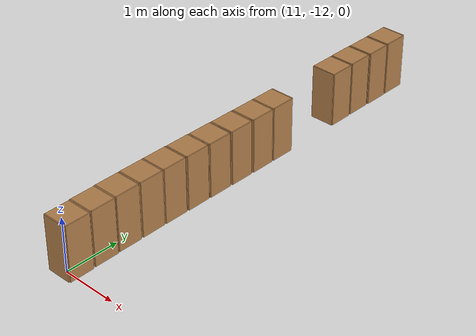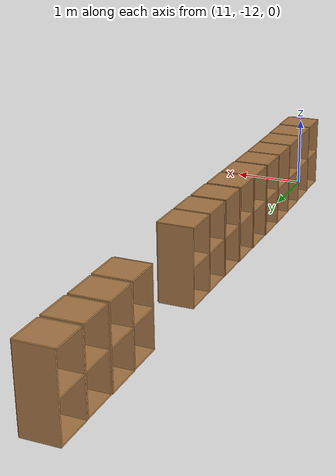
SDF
<sdf version="1.6">
 <world name="default">
  <model name="cabinet">
   <static>1</static>
   <link name="cabinet_bottom_plate">
    <inertial>
     <pose>0 0 -1 0 -0 0</pose>
     <inertia><ixx>2.05</ixx><ixy>0</ixy><ixz>0</ixz><iyy>2.05</iyy><iyz>0</iyz><izz>2.05</izz></inertia>
     <mass>25</mass>
    </inertial>
    <collision name="cabinet_bottom_plate_geom">
     <pose>0 0 0.01 0 -0 0</pose>
     <geometry><box><size>0.45 0.45 0.02</size></box></geometry>
    </collision>
    <visual name="cabinet_bottom_plate_geom_visual">
     <pose>0 0 0.01 0 -0 0</pose>
     <geometry><box><size>0.45 0.45 0.02</size></box></geometry>
     <material>
      <script><uri>file://media/materials/scripts/gazebo.material</uri><name>Gazebo/Wood</name></script>
     </material>
    </visual>
    <collision name="cabinet_bottom_plate_geom_cabinet_back_plate">
     <pose>0.235 0 0.51 0 -0 0</pose>
     <geometry><box><size>0.02 0.45 1.02</size></box></geometry>
    </collision>
    <visual name="cabinet_bottom_plate_geom_cabinet_back_plate_visual">
     <pose>0.235 0 0.51 0 -0 0</pose>
     <geometry><box><size>0.02 0.45 1.02</size></box></geometry>
     <material>
      <script><uri>file://media/materials/scripts/gazebo.material</uri><name>Gazebo/Wood</name></script>
     </material>
    </visual>
    <collision name="cabinet_bottom_plate_geom_cabinet_left_plate">
     <pose>0 0.235 0.51 0 -0 0</pose>
     <geometry><box><size>0.45 0.02 1.02</size></box></geometry>
    </collision>
    <visual name="cabinet_bottom_plate_geom_cabinet_left_plate_visual">
     <pose>0 0.235 0.51 0 -0 0</pose>
     <geometry><box><size>0.45 0.02 1.02</size></box></geometry>
     <material>
      <script><uri>file://media/materials/scripts/gazebo.material</uri><name>Gazebo/Wood</name></script>
     </material>
    </visual>
    <collision name="cabinet_bottom_plate_geom_cabinet_middle_plate">
     <pose>0 0 0.51 0 -0 0</pose>
     <geometry><box><size>0.45 0.45 0.02</size></box></geometry>
    </collision>
    <visual name="cabinet_bottom_plate_geom_cabinet_middle_plate_visual">
     <pose>0 0 0.51 0 -0 0</pose>
     <geometry><box><size>0.45 0.45 0.02</size></box></geometry>
     <material>
      <script><uri>file://media/materials/scripts/gazebo.material</uri><name>Gazebo/Wood</name></script>
     </material>
    </visual>
    <collision name="cabinet_bottom_plate_geom_cabinet_right_plate">
     <pose>0 -0.235 0.51 0 -0 0</pose>
     <geometry><box><size>0.45 0.02 1.02</size></box></geometry>
    </collision>
    <visual name="cabinet_bottom_plate_geom_cabinet_right_plate_visual">
     <pose>0 -0.235 0.51 0 -0 0</pose>
     <geometry><box><size>0.45 0.02 1.02</size></box></geometry>
     <material>
      <script><uri>file://media/materials/scripts/gazebo.material</uri><name>Gazebo/Wood</name></script>
     </material>
    </visual>
    <collision name="cabinet_bottom_plate_geom_cabinet_top_plate">
     <pose>0 0 1.01 0 -0 0</pose>
     <geometry><box><size>0.45 0.45 0.02</size></box></geometry>
    </collision>
    <visual name="cabinet_bottom_plate_geom_cabinet_top_plate_visual">
     <pose>0 0 1.01 0 -0 0</pose>
     <geometry><box><size>0.45 0.45 0.02</size></box></geometry>
     <material>
      <script><uri>file://media/materials/scripts/gazebo.material</uri><name>Gazebo/Wood</name></script>
     </material>
    </visual>
   </link>
   <pose>10.9873 -11.8945 0 0 -0 0</pose>
  </model>
  <model name="cabinet_clone">
   <static>1</static>
   <link name="cabinet_bottom_plate">
    <inertial>
     <pose>0 0 -1 0 -0 0</pose>
     <inertia><ixx>2.05</ixx><ixy>0</ixy><ixz>0</ixz><iyy>2.05</iyy><iyz>0</iyz><izz>2.05</izz></inertia>
     <mass>25</mass>
    </inertial>
    <collision name="cabinet_bottom_plate_geom">
     <pose>0 0 0.01 0 -0 0</pose>
     <geometry><box><size>0.45 0.45 0.02</size></box></geometry>
    </collision>
    <visual name="cabinet_bottom_plate_geom_visual">
     <pose>0 0 0.01 0 -0 0</pose>
     <geometry><box><size>0.45 0.45 0.02</size></box></geometry>
     <material>
      <script><uri>file://media/materials/scripts/gazebo.material</uri><name>Gazebo/Wood</name></script>
     </material>
    </visual>
    <collision name="cabinet_bottom_plate_geom_cabinet_back_plate">
     <pose>0.235 0 0.51 0 -0 0</pose>
     <geometry><box><size>0.02 0.45 1.02</size></box></geometry>
    </collision>
    <visual name="cabinet_bottom_plate_geom_cabinet_back_plate_visual">
     <pose>0.235 0 0.51 0 -0 0</pose>
     <geometry><box><size>0.02 0.45 1.02</size></box></geometry>
     <material>
      <script><uri>file://media/materials/scripts/gazebo.material</uri><name>Gazebo/Wood</name></script>
     </material>
    </visual>
    <collision name="cabinet_bottom_plate_geom_cabinet_left_plate">
     <pose>0 0.235 0.51 0 -0 0</pose>
     <geometry><box><size>0.45 0.02 1.02</size></box></geometry>
    </collision>
    <visual name="cabinet_bottom_plate_geom_cabinet_left_plate_visual">
     <pose>0 0.235 0.51 0 -0 0</pose>
     <geometry><box><size>0.45 0.02 1.02</size></box></geometry>
     <material>
      <script><uri>file://media/materials/scripts/gazebo.material</uri><name>Gazebo/Wood</name></script>
     </material>
    </visual>
    <collision name="cabinet_bottom_plate_geom_cabinet_middle_plate">
     <pose>0 0 0.51 0 -0 0</pose>
     <geometry><box><size>0.45 0.45 0.02</size></box></geometry>
    </collision>
    <visual name="cabinet_bottom_plate_geom_cabinet_middle_plate_visual">
     <pose>0 0 0.51 0 -0 0</pose>
     <geometry><box><size>0.45 0.45 0.02</size></box></geometry>
     <material>
      <script><uri>file://media/materials/scripts/gazebo.material</uri><name>Gazebo/Wood</name></script>
     </material>
    </visual>
    <collision name="cabinet_bottom_plate_geom_cabinet_right_plate">
     <pose>0 -0.235 0.51 0 -0 0</pose>
     <geometry><box><size>0.45 0.02 1.02</size></box></geometry>
    </collision>
    <visual name="cabinet_bottom_plate_geom_cabinet_right_plate_visual">
     <pose>0 -0.235 0.51 0 -0 0</pose>
     <geometry><box><size>0.45 0.02 1.02</size></box></geometry>
     <material>
      <script><uri>file://media/materials/scripts/gazebo.material</uri><name>Gazebo/Wood</name></script>
     </material>
    </visual>
    <collision name="cabinet_bottom_plate_geom_cabinet_top_plate">
     <pose>0 0 1.01 0 -0 0</pose>
     <geometry><box><size>0.45 0.45 0.02</size></box></geometry>
    </collision>
    <visual name="cabinet_bottom_plate_geom_cabinet_top_plate_visual">
     <pose>0 0 1.01 0 -0 0</pose>
     <geometry><box><size>0.45 0.45 0.02</size></box></geometry>
     <material>
      <script><uri>file://media/materials/scripts/gazebo.material</uri><name>Gazebo/Wood</name></script>
     </material>
    </visual>
   </link>
   <pose>10.9766 -11.4 0 0 -0 0</pose>
  </model>
  <model name="cabinet_clone_clone">
   <static>1</static>
   <link name="cabinet_bottom_plate">
    <inertial>
     <pose>0 0 -1 0 -0 0</pose>
     <inertia><ixx>2.05</ixx><ixy>0</ixy><ixz>0</ixz><iyy>2.05</iyy><iyz>0</iyz><izz>2.05</izz></inertia>
     <mass>25</mass>
    </inertial>
    <collision name="cabinet_bottom_plate_geom">
     <pose>0 0 0.01 0 -0 0</pose>
     <geometry><box><size>0.45 0.45 0.02</size></box></geometry>
    </collision>
    <visual name="cabinet_bottom_plate_geom_visual">
     <pose>0 0 0.01 0 -0 0</pose>
     <geometry><box><size>0.45 0.45 0.02</size></box></geometry>
     <material>
      <script><uri>file://media/materials/scripts/gazebo.material</uri><name>Gazebo/Wood</name></script>
     </material>
    </visual>
    <collision name="cabinet_bottom_plate_geom_cabinet_back_plate">
     <pose>0.235 0 0.51 0 -0 0</pose>
     <geometry><box><size>0.02 0.45 1.02</size></box></geometry>
    </collision>
    <visual name="cabinet_bottom_plate_geom_cabinet_back_plate_visual">
     <pose>0.235 0 0.51 0 -0 0</pose>
     <geometry><box><size>0.02 0.45 1.02</size></box></geometry>
     <material>
      <script><uri>file://media/materials/scripts/gazebo.material</uri><name>Gazebo/Wood</name></script>
     </material>
    </visual>
    <collision name="cabinet_bottom_plate_geom_cabinet_left_plate">
     <pose>0 0.235 0.51 0 -0 0</pose>
     <geometry><box><size>0.45 0.02 1.02</size></box></geometry>
    </collision>
    <visual name="cabinet_bottom_plate_geom_cabinet_left_plate_visual">
     <pose>0 0.235 0.51 0 -0 0</pose>
     <geometry><box><size>0.45 0.02 1.02</size></box></geometry>
     <material>
      <script><uri>file://media/materials/scripts/gazebo.material</uri><name>Gazebo/Wood</name></script>
     </material>
    </visual>
    <collision name="cabinet_bottom_plate_geom_cabinet_middle_plate">
     <pose>0 0 0.51 0 -0 0</pose>
     <geometry><box><size>0.45 0.45 0.02</size></box></geometry>
    </collision>
    <visual name="cabinet_bottom_plate_geom_cabinet_middle_plate_visual">
     <pose>0 0 0.51 0 -0 0</pose>
     <geometry><box><size>0.45 0.45 0.02</size></box></geometry>
     <material>
      <script><uri>file://media/materials/scripts/gazebo.material</uri><name>Gazebo/Wood</name></script>
     </material>
    </visual>
    <collision name="cabinet_bottom_plate_geom_cabinet_right_plate">
     <pose>0 -0.235 0.51 0 -0 0</pose>
     <geometry><box><size>0.45 0.02 1.02</size></box></geometry>
    </collision>
    <visual name="cabinet_bottom_plate_geom_cabinet_right_plate_visual">
     <pose>0 -0.235 0.51 0 -0 0</pose>
     <geometry><box><size>0.45 0.02 1.02</size></box></geometry>
     <material>
      <script><uri>file://media/materials/scripts/gazebo.material</uri><name>Gazebo/Wood</name></script>
     </material>
    </visual>
    <collision name="cabinet_bottom_plate_geom_cabinet_top_plate">
     <pose>0 0 1.01 0 -0 0</pose>
     <geometry><box><size>0.45 0.45 0.02</size></box></geometry>
    </collision>
    <visual name="cabinet_bottom_plate_geom_cabinet_top_plate_visual">
     <pose>0 0 1.01 0 -0 0</pose>
     <geometry><box><size>0.45 0.45 0.02</size></box></geometry>
     <material>
      <script><uri>file://media/materials/scripts/gazebo.material</uri><name>Gazebo/Wood</name></script>
     </material>
    </visual>
   </link>
   <pose>10.968 -10.9104 0 0 -0 0</pose>
  </model>
  <model name="cabinet_clone_clone_clone">
   <static>1</static>
   <link name="cabinet_bottom_plate">
    <inertial>
     <pose>0 0 -1 0 -0 0</pose>
     <inertia><ixx>2.05</ixx><ixy>0</ixy><ixz>0</ixz><iyy>2.05</iyy><iyz>0</iyz><izz>2.05</izz></inertia>
     <mass>25</mass>
    </inertial>
    <collision name="cabinet_bottom_plate_geom">
     <pose>0 0 0.01 0 -0 0</pose>
     <geometry><box><size>0.45 0.45 0.02</size></box></geometry>
    </collision>
    <visual name="cabinet_bottom_plate_geom_visual">
     <pose>0 0 0.01 0 -0 0</pose>
     <geometry><box><size>0.45 0.45 0.02</size></box></geometry>
     <material>
      <script><uri>file://media/materials/scripts/gazebo.material</uri><name>Gazebo/Wood</name></script>
     </material>
    </visual>
    <collision name="cabinet_bottom_plate_geom_cabinet_back_plate">
     <pose>0.235 0 0.51 0 -0 0</pose>
     <geometry><box><size>0.02 0.45 1.02</size></box></geometry>
    </collision>
    <visual name="cabinet_bottom_plate_geom_cabinet_back_plate_visual">
     <pose>0.235 0 0.51 0 -0 0</pose>
     <geometry><box><size>0.02 0.45 1.02</size></box></geometry>
     <material>
      <script><uri>file://media/materials/scripts/gazebo.material</uri><name>Gazebo/Wood</name></script>
     </material>
    </visual>
    <collision name="cabinet_bottom_plate_geom_cabinet_left_plate">
     <pose>0 0.235 0.51 0 -0 0</pose>
     <geometry><box><size>0.45 0.02 1.02</size></box></geometry>
    </collision>
    <visual name="cabinet_bottom_plate_geom_cabinet_left_plate_visual">
     <pose>0 0.235 0.51 0 -0 0</pose>
     <geometry><box><size>0.45 0.02 1.02</size></box></geometry>
     <material>
      <script><uri>file://media/materials/scripts/gazebo.material</uri><name>Gazebo/Wood</name></script>
     </material>
    </visual>
    <collision name="cabinet_bottom_plate_geom_cabinet_middle_plate">
     <pose>0 0 0.51 0 -0 0</pose>
     <geometry><box><size>0.45 0.45 0.02</size></box></geometry>
    </collision>
    <visual name="cabinet_bottom_plate_geom_cabinet_middle_plate_visual">
     <pose>0 0 0.51 0 -0 0</pose>
     <geometry><box><size>0.45 0.45 0.02</size></box></geometry>
     <material>
      <script><uri>file://media/materials/scripts/gazebo.material</uri><name>Gazebo/Wood</name></script>
     </material>
    </visual>
    <collision name="cabinet_bottom_plate_geom_cabinet_right_plate">
     <pose>0 -0.235 0.51 0 -0 0</pose>
     <geometry><box><size>0.45 0.02 1.02</size></box></geometry>
    </collision>
    <visual name="cabinet_bottom_plate_geom_cabinet_right_plate_visual">
     <pose>0 -0.235 0.51 0 -0 0</pose>
     <geometry><box><size>0.45 0.02 1.02</size></box></geometry>
     <material>
      <script><uri>file://media/materials/scripts/gazebo.material</uri><name>Gazebo/Wood</name></script>
     </material>
    </visual>
    <collision name="cabinet_bottom_plate_geom_cabinet_top_plate">
     <pose>0 0 1.01 0 -0 0</pose>
     <geometry><box><size>0.45 0.45 0.02</size></box></geometry>
    </collision>
    <visual name="cabinet_bottom_plate_geom_cabinet_top_plate_visual">
     <pose>0 0 1.01 0 -0 0</pose>
     <geometry><box><size>0.45 0.45 0.02</size></box></geometry>
     <material>
      <script><uri>file://media/materials/scripts/gazebo.material</uri><name>Gazebo/Wood</name></script>
     </material>
    </visual>
   </link>
   <pose>10.9648 -10.417 0 0 -0 0</pose>
  </model>
  <model name="cabinet_clone_clone_clone_clone">
   <static>1</static>
   <link name="cabinet_bottom_plate">
    <inertial>
     <pose>0 0 -1 0 -0 0</pose>
     <inertia><ixx>2.05</ixx><ixy>0</ixy><ixz>0</ixz><iyy>2.05</iyy><iyz>0</iyz><izz>2.05</izz></inertia>
     <mass>25</mass>
    </inertial>
    <collision name="cabinet_bottom_plate_geom">
     <pose>0 0 0.01 0 -0 0</pose>
     <geometry><box><size>0.45 0.45 0.02</size></box></geometry>
    </collision>
    <visual name="cabinet_bottom_plate_geom_visual">
     <pose>0 0 0.01 0 -0 0</pose>
     <geometry><box><size>0.45 0.45 0.02</size></box></geometry>
     <material>
      <script><uri>file://media/materials/scripts/gazebo.material</uri><name>Gazebo/Wood</name></script>
     </material>
    </visual>
    <collision name="cabinet_bottom_plate_geom_cabinet_back_plate">
     <pose>0.235 0 0.51 0 -0 0</pose>
     <geometry><box><size>0.02 0.45 1.02</size></box></geometry>
    </collision>
    <visual name="cabinet_bottom_plate_geom_cabinet_back_plate_visual">
     <pose>0.235 0 0.51 0 -0 0</pose>
     <geometry><box><size>0.02 0.45 1.02</size></box></geometry>
     <material>
      <script><uri>file://media/materials/scripts/gazebo.material</uri><name>Gazebo/Wood</name></script>
     </material>
    </visual>
    <collision name="cabinet_bottom_plate_geom_cabinet_left_plate">
     <pose>0 0.235 0.51 0 -0 0</pose>
     <geometry><box><size>0.45 0.02 1.02</size></box></geometry>
    </collision>
    <visual name="cabinet_bottom_plate_geom_cabinet_left_plate_visual">
     <pose>0 0.235 0.51 0 -0 0</pose>
     <geometry><box><size>0.45 0.02 1.02</size></box></geometry>
     <material>
      <script><uri>file://media/materials/scripts/gazebo.material</uri><name>Gazebo/Wood</name></script>
     </material>
    </visual>
    <collision name="cabinet_bottom_plate_geom_cabinet_middle_plate">
     <pose>0 0 0.51 0 -0 0</pose>
     <geometry><box><size>0.45 0.45 0.02</size></box></geometry>
    </collision>
    <visual name="cabinet_bottom_plate_geom_cabinet_middle_plate_visual">
     <pose>0 0 0.51 0 -0 0</pose>
     <geometry><box><size>0.45 0.45 0.02</size></box></geometry>
     <material>
      <script><uri>file://media/materials/scripts/gazebo.material</uri><name>Gazebo/Wood</name></script>
     </material>
    </visual>
    <collision name="cabinet_bottom_plate_geom_cabinet_right_plate">
     <pose>0 -0.235 0.51 0 -0 0</pose>
     <geometry><box><size>0.45 0.02 1.02</size></box></geometry>
    </collision>
    <visual name="cabinet_bottom_plate_geom_cabinet_right_plate_visual">
     <pose>0 -0.235 0.51 0 -0 0</pose>
     <geometry><box><size>0.45 0.02 1.02</size></box></geometry>
     <material>
      <script><uri>file://media/materials/scripts/gazebo.material</uri><name>Gazebo/Wood</name></script>
     </material>
    </visual>
    <collision name="cabinet_bottom_plate_geom_cabinet_top_plate">
     <pose>0 0 1.01 0 -0 0</pose>
     <geometry><box><size>0.45 0.45 0.02</size></box></geometry>
    </collision>
    <visual name="cabinet_bottom_plate_geom_cabinet_top_plate_visual">
     <pose>0 0 1.01 0 -0 0</pose>
     <geometry><box><size>0.45 0.45 0.02</size></box></geometry>
     <material>
      <script><uri>file://media/materials/scripts/gazebo.material</uri><name>Gazebo/Wood</name></script>
     </material>
    </visual>
   </link>
   <pose>10.9662 -9.93105 0 0 -0 0</pose>
  </model>
  <model name="cabinet_clone_clone_clone_clone_clone">
   <static>1</static>
   <link name="cabinet_bottom_plate">
    <inertial>
     <pose>0 0 -1 0 -0 0</pose>
     <inertia><ixx>2.05</ixx><ixy>0</ixy><ixz>0</ixz><iyy>2.05</iyy><iyz>0</iyz><izz>2.05</izz></inertia>
     <mass>25</mass>
    </inertial>
    <collision name="cabinet_bottom_plate_geom">
     <pose>0 0 0.01 0 -0 0</pose>
     <geometry><box><size>0.45 0.45 0.02</size></box></geometry>
    </collision>
    <visual name="cabinet_bottom_plate_geom_visual">
     <pose>0 0 0.01 0 -0 0</pose>
     <geometry><box><size>0.45 0.45 0.02</size></box></geometry>
     <material>
      <script><uri>file://media/materials/scripts/gazebo.material</uri><name>Gazebo/Wood</name></script>
     </material>
    </visual>
    <collision name="cabinet_bottom_plate_geom_cabinet_back_plate">
     <pose>0.235 0 0.51 0 -0 0</pose>
     <geometry><box><size>0.02 0.45 1.02</size></box></geometry>
    </collision>
    <visual name="cabinet_bottom_plate_geom_cabinet_back_plate_visual">
     <pose>0.235 0 0.51 0 -0 0</pose>
     <geometry><box><size>0.02 0.45 1.02</size></box></geometry>
     <material>
      <script><uri>file://media/materials/scripts/gazebo.material</uri><name>Gazebo/Wood</name></script>
     </material>
    </visual>
    <collision name="cabinet_bottom_plate_geom_cabinet_left_plate">
     <pose>0 0.235 0.51 0 -0 0</pose>
     <geometry><box><size>0.45 0.02 1.02</size></box></geometry>
    </collision>
    <visual name="cabinet_bottom_plate_geom_cabinet_left_plate_visual">
     <pose>0 0.235 0.51 0 -0 0</pose>
     <geometry><box><size>0.45 0.02 1.02</size></box></geometry>
     <material>
      <script><uri>file://media/materials/scripts/gazebo.material</uri><name>Gazebo/Wood</name></script>
     </material>
    </visual>
    <collision name="cabinet_bottom_plate_geom_cabinet_middle_plate">
     <pose>0 0 0.51 0 -0 0</pose>
     <geometry><box><size>0.45 0.45 0.02</size></box></geometry>
    </collision>
    <visual name="cabinet_bottom_plate_geom_cabinet_middle_plate_visual">
     <pose>0 0 0.51 0 -0 0</pose>
     <geometry><box><size>0.45 0.45 0.02</size></box></geometry>
     <material>
      <script><uri>file://media/materials/scripts/gazebo.material</uri><name>Gazebo/Wood</name></script>
     </material>
    </visual>
    <collision name="cabinet_bottom_plate_geom_cabinet_right_plate">
     <pose>0 -0.235 0.51 0 -0 0</pose>
     <geometry><box><size>0.45 0.02 1.02</size></box></geometry>
    </collision>
    <visual name="cabinet_bottom_plate_geom_cabinet_right_plate_visual">
     <pose>0 -0.235 0.51 0 -0 0</pose>
     <geometry><box><size>0.45 0.02 1.02</size></box></geometry>
     <material>
      <script><uri>file://media/materials/scripts/gazebo.material</uri><name>Gazebo/Wood</name></script>
     </material>
    </visual>
    <collision name="cabinet_bottom_plate_geom_cabinet_top_plate">
     <pose>0 0 1.01 0 -0 0</pose>
     <geometry><box><size>0.45 0.45 0.02</size></box></geometry>
    </collision>
    <visual name="cabinet_bottom_plate_geom_cabinet_top_plate_visual">
     <pose>0 0 1.01 0 -0 0</pose>
     <geometry><box><size>0.45 0.45 0.02</size></box></geometry>
     <material>
      <script><uri>file://media/materials/scripts/gazebo.material</uri><name>Gazebo/Wood</name></script>
     </material>
    </visual>
   </link>
   <pose>10.9724 -9.43688 0 0 -0 0</pose>
  </model>
  <model name="cabinet_0">
   <static>1</static>
   <link name="cabinet_bottom_plate">
    <inertial>
     <pose>0 0 -1 0 -0 0</pose>
     <inertia><ixx>2.05</ixx><ixy>0</ixy><ixz>0</ixz><iyy>2.05</iyy><iyz>0</iyz><izz>2.05</izz></inertia>
     <mass>25</mass>
    </inertial>
    <collision name="cabinet_bottom_plate_geom">
     <pose>0 0 0.01 0 -0 0</pose>
     <geometry><box><size>0.45 0.45 0.02</size></box></geometry>
    </collision>
    <visual name="cabinet_bottom_plate_geom_visual">
     <pose>0 0 0.01 0 -0 0</pose>
     <geometry><box><size>0.45 0.45 0.02</size></box></geometry>
     <material>
      <script><uri>file://media/materials/scripts/gazebo.material</uri><name>Gazebo/Wood</name></script>
     </material>
    </visual>
    <collision name="cabinet_bottom_plate_geom_cabinet_back_plate">
     <pose>0.235 0 0.51 0 -0 0</pose>
     <geometry><box><size>0.02 0.45 1.02</size></box></geometry>
    </collision>
    <visual name="cabinet_bottom_plate_geom_cabinet_back_plate_visual">
     <pose>0.235 0 0.51 0 -0 0</pose>
     <geometry><box><size>0.02 0.45 1.02</size></box></geometry>
     <material>
      <script><uri>file://media/materials/scripts/gazebo.material</uri><name>Gazebo/Wood</name></script>
     </material>
    </visual>
    <collision name="cabinet_bottom_plate_geom_cabinet_left_plate">
     <pose>0 0.235 0.51 0 -0 0</pose>
     <geometry><box><size>0.45 0.02 1.02</size></box></geometry>
    </collision>
    <visual name="cabinet_bottom_plate_geom_cabinet_left_plate_visual">
     <pose>0 0.235 0.51 0 -0 0</pose>
     <geometry><box><size>0.45 0.02 1.02</size></box></geometry>
     <material>
      <script><uri>file://media/materials/scripts/gazebo.material</uri><name>Gazebo/Wood</name></script>
     </material>
    </visual>
    <collision name="cabinet_bottom_plate_geom_cabinet_middle_plate">
     <pose>0 0 0.51 0 -0 0</pose>
     <geometry><box><size>0.45 0.45 0.02</size></box></geometry>
    </collision>
    <visual name="cabinet_bottom_plate_geom_cabinet_middle_plate_visual">
     <pose>0 0 0.51 0 -0 0</pose>
     <geometry><box><size>0.45 0.45 0.02</size></box></geometry>
     <material>
      <script><uri>file://media/materials/scripts/gazebo.material</uri><name>Gazebo/Wood</name></script>
     </material>
    </visual>
    <collision name="cabinet_bottom_plate_geom_cabinet_right_plate">
     <pose>0 -0.235 0.51 0 -0 0</pose>
     <geometry><box><size>0.45 0.02 1.02</size></box></geometry>
    </collision>
    <visual name="cabinet_bottom_plate_geom_cabinet_right_plate_visual">
     <pose>0 -0.235 0.51 0 -0 0</pose>
     <geometry><box><size>0.45 0.02 1.02</size></box></geometry>
     <material>
      <script><uri>file://media/materials/scripts/gazebo.material</uri><name>Gazebo/Wood</name></script>
     </material>
    </visual>
    <collision name="cabinet_bottom_plate_geom_cabinet_top_plate">
     <pose>0 0 1.01 0 -0 0</pose>
     <geometry><box><size>0.45 0.45 0.02</size></box></geometry>
    </collision>
    <visual name="cabinet_bottom_plate_geom_cabinet_top_plate_visual">
     <pose>0 0 1.01 0 -0 0</pose>
     <geometry><box><size>0.45 0.45 0.02</size></box></geometry>
     <material>
      <script><uri>file://media/materials/scripts/gazebo.material</uri><name>Gazebo/Wood</name></script>
     </material>
    </visual>
   </link>
   <pose>10.9778 -8.94598 0 0 -0 0</pose>
  </model>
  <model name="cabinet_0_clone">
   <static>1</static>
   <link name="cabinet_bottom_plate">
    <inertial>
     <pose>0 0 -1 0 -0 0</pose>
     <inertia><ixx>2.05</ixx><ixy>0</ixy><ixz>0</ixz><iyy>2.05</iyy><iyz>0</iyz><izz>2.05</izz></inertia>
     <mass>25</mass>
    </inertial>
    <collision name="cabinet_bottom_plate_geom">
     <pose>0 0 0.01 0 -0 0</pose>
     <geometry><box><size>0.45 0.45 0.02</size></box></geometry>
    </collision>
    <visual name="cabinet_bottom_plate_geom_visual">
     <pose>0 0 0.01 0 -0 0</pose>
     <geometry><box><size>0.45 0.45 0.02</size></box></geometry>
     <material>
      <script><uri>file://media/materials/scripts/gazebo.material</uri><name>Gazebo/Wood</name></script>
     </material>
    </visual>
    <collision name="cabinet_bottom_plate_geom_cabinet_back_plate">
     <pose>0.235 0 0.51 0 -0 0</pose>
     <geometry><box><size>0.02 0.45 1.02</size></box></geometry>
    </collision>
    <visual name="cabinet_bottom_plate_geom_cabinet_back_plate_visual">
     <pose>0.235 0 0.51 0 -0 0</pose>
     <geometry><box><size>0.02 0.45 1.02</size></box></geometry>
     <material>
      <script><uri>file://media/materials/scripts/gazebo.material</uri><name>Gazebo/Wood</name></script>
     </material>
    </visual>
    <collision name="cabinet_bottom_plate_geom_cabinet_left_plate">
     <pose>0 0.235 0.51 0 -0 0</pose>
     <geometry><box><size>0.45 0.02 1.02</size></box></geometry>
    </collision>
    <visual name="cabinet_bottom_plate_geom_cabinet_left_plate_visual">
     <pose>0 0.235 0.51 0 -0 0</pose>
     <geometry><box><size>0.45 0.02 1.02</size></box></geometry>
     <material>
      <script><uri>file://media/materials/scripts/gazebo.material</uri><name>Gazebo/Wood</name></script>
     </material>
    </visual>
    <collision name="cabinet_bottom_plate_geom_cabinet_middle_plate">
     <pose>0 0 0.51 0 -0 0</pose>
     <geometry><box><size>0.45 0.45 0.02</size></box></geometry>
    </collision>
    <visual name="cabinet_bottom_plate_geom_cabinet_middle_plate_visual">
     <pose>0 0 0.51 0 -0 0</pose>
     <geometry><box><size>0.45 0.45 0.02</size></box></geometry>
     <material>
      <script><uri>file://media/materials/scripts/gazebo.material</uri><name>Gazebo/Wood</name></script>
     </material>
    </visual>
    <collision name="cabinet_bottom_plate_geom_cabinet_right_plate">
     <pose>0 -0.235 0.51 0 -0 0</pose>
     <geometry><box><size>0.45 0.02 1.02</size></box></geometry>
    </collision>
    <visual name="cabinet_bottom_plate_geom_cabinet_right_plate_visual">
     <pose>0 -0.235 0.51 0 -0 0</pose>
     <geometry><box><size>0.45 0.02 1.02</size></box></geometry>
     <material>
      <script><uri>file://media/materials/scripts/gazebo.material</uri><name>Gazebo/Wood</name></script>
     </material>
    </visual>
    <collision name="cabinet_bottom_plate_geom_cabinet_top_plate">
     <pose>0 0 1.01 0 -0 0</pose>
     <geometry><box><size>0.45 0.45 0.02</size></box></geometry>
    </collision>
    <visual name="cabinet_bottom_plate_geom_cabinet_top_plate_visual">
     <pose>0 0 1.01 0 -0 0</pose>
     <geometry><box><size>0.45 0.45 0.02</size></box></geometry>
     <material>
      <script><uri>file://media/materials/scripts/gazebo.material</uri><name>Gazebo/Wood</name></script>
     </material>
    </visual>
   </link>
   <pose>10.9854 -8.44735 0 0 -0 0</pose>
  </model>
  <model name="cabinet_0_clone_clone">
   <static>1</static>
   <link name="cabinet_bottom_plate">
    <inertial>
     <pose>0 0 -1 0 -0 0</pose>
     <inertia><ixx>2.05</ixx><ixy>0</ixy><ixz>0</ixz><iyy>2.05</iyy><iyz>0</iyz><izz>2.05</izz></inertia>
     <mass>25</mass>
    </inertial>
    <collision name="cabinet_bottom_plate_geom">
     <pose>0 0 0.01 0 -0 0</pose>
     <geometry><box><size>0.45 0.45 0.02</size></box></geometry>
    </collision>
    <visual name="cabinet_bottom_plate_geom_visual">
     <pose>0 0 0.01 0 -0 0</pose>
     <geometry><box><size>0.45 0.45 0.02</size></box></geometry>
     <material>
      <script><uri>file://media/materials/scripts/gazebo.material</uri><name>Gazebo/Wood</name></script>
     </material>
    </visual>
    <collision name="cabinet_bottom_plate_geom_cabinet_back_plate">
     <pose>0.235 0 0.51 0 -0 0</pose>
     <geometry><box><size>0.02 0.45 1.02</size></box></geometry>
    </collision>
    <visual name="cabinet_bottom_plate_geom_cabinet_back_plate_visual">
     <pose>0.235 0 0.51 0 -0 0</pose>
     <geometry><box><size>0.02 0.45 1.02</size></box></geometry>
     <material>
      <script><uri>file://media/materials/scripts/gazebo.material</uri><name>Gazebo/Wood</name></script>
     </material>
    </visual>
    <collision name="cabinet_bottom_plate_geom_cabinet_left_plate">
     <pose>0 0.235 0.51 0 -0 0</pose>
     <geometry><box><size>0.45 0.02 1.02</size></box></geometry>
    </collision>
    <visual name="cabinet_bottom_plate_geom_cabinet_left_plate_visual">
     <pose>0 0.235 0.51 0 -0 0</pose>
     <geometry><box><size>0.45 0.02 1.02</size></box></geometry>
     <material>
      <script><uri>file://media/materials/scripts/gazebo.material</uri><name>Gazebo/Wood</name></script>
     </material>
    </visual>
    <collision name="cabinet_bottom_plate_geom_cabinet_middle_plate">
     <pose>0 0 0.51 0 -0 0</pose>
     <geometry><box><size>0.45 0.45 0.02</size></box></geometry>
    </collision>
    <visual name="cabinet_bottom_plate_geom_cabinet_middle_plate_visual">
     <pose>0 0 0.51 0 -0 0</pose>
     <geometry><box><size>0.45 0.45 0.02</size></box></geometry>
     <material>
      <script><uri>file://media/materials/scripts/gazebo.material</uri><name>Gazebo/Wood</name></script>
     </material>
    </visual>
    <collision name="cabinet_bottom_plate_geom_cabinet_right_plate">
     <pose>0 -0.235 0.51 0 -0 0</pose>
     <geometry><box><size>0.45 0.02 1.02</size></box></geometry>
    </collision>
    <visual name="cabinet_bottom_plate_geom_cabinet_right_plate_visual">
     <pose>0 -0.235 0.51 0 -0 0</pose>
     <geometry><box><size>0.45 0.02 1.02</size></box></geometry>
     <material>
      <script><uri>file://media/materials/scripts/gazebo.material</uri><name>Gazebo/Wood</name></script>
     </material>
    </visual>
    <collision name="cabinet_bottom_plate_geom_cabinet_top_plate">
     <pose>0 0 1.01 0 -0 0</pose>
     <geometry><box><size>0.45 0.45 0.02</size></box></geometry>
    </collision>
    <visual name="cabinet_bottom_plate_geom_cabinet_top_plate_visual">
     <pose>0 0 1.01 0 -0 0</pose>
     <geometry><box><size>0.45 0.45 0.02</size></box></geometry>
     <material>
      <script><uri>file://media/materials/scripts/gazebo.material</uri><name>Gazebo/Wood</name></script>
     </material>
    </visual>
   </link>
   <pose>10.9898 -7.9486 0 0 -0 0</pose>
  </model>
  <model name="cabinet_0_clone_clone_clone">
   <static>1</static>
   <link name="cabinet_bottom_plate">
    <inertial>
     <pose>0 0 -1 0 -0 0</pose>
     <inertia><ixx>2.05</ixx><ixy>0</ixy><ixz>0</ixz><iyy>2.05</iyy><iyz>0</iyz><izz>2.05</izz></inertia>
     <mass>25</mass>
    </inertial>
    <collision name="cabinet_bottom_plate_geom">
     <pose>0 0 0.01 0 -0 0</pose>
     <geometry><box><size>0.45 0.45 0.02</size></box></geometry>
    </collision>
    <visual name="cabinet_bottom_plate_geom_visual">
     <pose>0 0 0.01 0 -0 0</pose>
     <geometry><box><size>0.45 0.45 0.02</size></box></geometry>
     <material>
      <script><uri>file://media/materials/scripts/gazebo.material</uri><name>Gazebo/Wood</name></script>
     </material>
    </visual>
    <collision name="cabinet_bottom_plate_geom_cabinet_back_plate">
     <pose>0.235 0 0.51 0 -0 0</pose>
     <geometry><box><size>0.02 0.45 1.02</size></box></geometry>
    </collision>
    <visual name="cabinet_bottom_plate_geom_cabinet_back_plate_visual">
     <pose>0.235 0 0.51 0 -0 0</pose>
     <geometry><box><size>0.02 0.45 1.02</size></box></geometry>
     <material>
      <script><uri>file://media/materials/scripts/gazebo.material</uri><name>Gazebo/Wood</name></script>
     </material>
    </visual>
    <collision name="cabinet_bottom_plate_geom_cabinet_left_plate">
     <pose>0 0.235 0.51 0 -0 0</pose>
     <geometry><box><size>0.45 0.02 1.02</size></box></geometry>
    </collision>
    <visual name="cabinet_bottom_plate_geom_cabinet_left_plate_visual">
     <pose>0 0.235 0.51 0 -0 0</pose>
     <geometry><box><size>0.45 0.02 1.02</size></box></geometry>
     <material>
      <script><uri>file://media/materials/scripts/gazebo.material</uri><name>Gazebo/Wood</name></script>
     </material>
    </visual>
    <collision name="cabinet_bottom_plate_geom_cabinet_middle_plate">
     <pose>0 0 0.51 0 -0 0</pose>
     <geometry><box><size>0.45 0.45 0.02</size></box></geometry>
    </collision>
    <visual name="cabinet_bottom_plate_geom_cabinet_middle_plate_visual">
     <pose>0 0 0.51 0 -0 0</pose>
     <geometry><box><size>0.45 0.45 0.02</size></box></geometry>
     <material>
      <script><uri>file://media/materials/scripts/gazebo.material</uri><name>Gazebo/Wood</name></script>
     </material>
    </visual>
    <collision name="cabinet_bottom_plate_geom_cabinet_right_plate">
     <pose>0 -0.235 0.51 0 -0 0</pose>
     <geometry><box><size>0.45 0.02 1.02</size></box></geometry>
    </collision>
    <visual name="cabinet_bottom_plate_geom_cabinet_right_plate_visual">
     <pose>0 -0.235 0.51 0 -0 0</pose>
     <geometry><box><size>0.45 0.02 1.02</size></box></geometry>
     <material>
      <script><uri>file://media/materials/scripts/gazebo.material</uri><name>Gazebo/Wood</name></script>
     </material>
    </visual>
    <collision name="cabinet_bottom_plate_geom_cabinet_top_plate">
     <pose>0 0 1.01 0 -0 0</pose>
     <geometry><box><size>0.45 0.45 0.02</size></box></geometry>
    </collision>
    <visual name="cabinet_bottom_plate_geom_cabinet_top_plate_visual">
     <pose>0 0 1.01 0 -0 0</pose>
     <geometry><box><size>0.45 0.45 0.02</size></box></geometry>
     <material>
      <script><uri>file://media/materials/scripts/gazebo.material</uri><name>Gazebo/Wood</name></script>
     </material>
    </visual>
   </link>
   <pose>10.9917 -7.46076 0 0 -0 0</pose>
  </model>
  <model name="cabinet_0_clone_clone_clone_clone">
   <static>1</static>
   <link name="cabinet_bottom_plate">
    <inertial>
     <pose>0 0 -1 0 -0 0</pose>
     <inertia><ixx>2.05</ixx><ixy>0</ixy><ixz>0</ixz><iyy>2.05</iyy><iyz>0</iyz><izz>2.05</izz></inertia>
     <mass>25</mass>
    </inertial>
    <collision name="cabinet_bottom_plate_geom">
     <pose>0 0 0.01 0 -0 0</pose>
     <geometry><box><size>0.45 0.45 0.02</size></box></geometry>
    </collision>
    <visual name="cabinet_bottom_plate_geom_visual">
     <pose>0 0 0.01 0 -0 0</pose>
     <geometry><box><size>0.45 0.45 0.02</size></box></geometry>
     <material>
      <script><uri>file://media/materials/scripts/gazebo.material</uri><name>Gazebo/Wood</name></script>
     </material>
    </visual>
    <collision name="cabinet_bottom_plate_geom_cabinet_back_plate">
     <pose>0.235 0 0.51 0 -0 0</pose>
     <geometry><box><size>0.02 0.45 1.02</size></box></geometry>
    </collision>
    <visual name="cabinet_bottom_plate_geom_cabinet_back_plate_visual">
     <pose>0.235 0 0.51 0 -0 0</pose>
     <geometry><box><size>0.02 0.45 1.02</size></box></geometry>
     <material>
      <script><uri>file://media/materials/scripts/gazebo.material</uri><name>Gazebo/Wood</name></script>
     </material>
    </visual>
    <collision name="cabinet_bottom_plate_geom_cabinet_left_plate">
     <pose>0 0.235 0.51 0 -0 0</pose>
     <geometry><box><size>0.45 0.02 1.02</size></box></geometry>
    </collision>
    <visual name="cabinet_bottom_plate_geom_cabinet_left_plate_visual">
     <pose>0 0.235 0.51 0 -0 0</pose>
     <geometry><box><size>0.45 0.02 1.02</size></box></geometry>
     <material>
      <script><uri>file://media/materials/scripts/gazebo.material</uri><name>Gazebo/Wood</name></script>
     </material>
    </visual>
    <collision name="cabinet_bottom_plate_geom_cabinet_middle_plate">
     <pose>0 0 0.51 0 -0 0</pose>
     <geometry><box><size>0.45 0.45 0.02</size></box></geometry>
    </collision>
    <visual name="cabinet_bottom_plate_geom_cabinet_middle_plate_visual">
     <pose>0 0 0.51 0 -0 0</pose>
     <geometry><box><size>0.45 0.45 0.02</size></box></geometry>
     <material>
      <script><uri>file://media/materials/scripts/gazebo.material</uri><name>Gazebo/Wood</name></script>
     </material>
    </visual>
    <collision name="cabinet_bottom_plate_geom_cabinet_right_plate">
     <pose>0 -0.235 0.51 0 -0 0</pose>
     <geometry><box><size>0.45 0.02 1.02</size></box></geometry>
    </collision>
    <visual name="cabinet_bottom_plate_geom_cabinet_right_plate_visual">
     <pose>0 -0.235 0.51 0 -0 0</pose>
     <geometry><box><size>0.45 0.02 1.02</size></box></geometry>
     <material>
      <script><uri>file://media/materials/scripts/gazebo.material</uri><name>Gazebo/Wood</name></script>
     </material>
    </visual>
    <collision name="cabinet_bottom_plate_geom_cabinet_top_plate">
     <pose>0 0 1.01 0 -0 0</pose>
     <geometry><box><size>0.45 0.45 0.02</size></box></geometry>
    </collision>
    <visual name="cabinet_bottom_plate_geom_cabinet_top_plate_visual">
     <pose>0 0 1.01 0 -0 0</pose>
     <geometry><box><size>0.45 0.45 0.02</size></box></geometry>
     <material>
      <script><uri>file://media/materials/scripts/gazebo.material</uri><name>Gazebo/Wood</name></script>
     </material>
    </visual>
   </link>
   <pose>10.9925 -5.91469 0 0 -0 0</pose>
  </model>
  <model name="cabinet_0_clone_clone_clone_clone_clone">
   <static>1</static>
   <link name="cabinet_bottom_plate">
    <inertial>
     <pose>0 0 -1 0 -0 0</pose>
     <inertia><ixx>2.05</ixx><ixy>0</ixy><ixz>0</ixz><iyy>2.05</iyy><iyz>0</iyz><izz>2.05</izz></inertia>
     <mass>25</mass>
    </inertial>
    <collision name="cabinet_bottom_plate_geom">
     <pose>0 0 0.01 0 -0 0</pose>
     <geometry><box><size>0.45 0.45 0.02</size></box></geometry>
    </collision>
    <visual name="cabinet_bottom_plate_geom_visual">
     <pose>0 0 0.01 0 -0 0</pose>
     <geometry><box><size>0.45 0.45 0.02</size></box></geometry>
     <material>
      <script><uri>file://media/materials/scripts/gazebo.material</uri><name>Gazebo/Wood</name></script>
     </material>
    </visual>
    <collision name="cabinet_bottom_plate_geom_cabinet_back_plate">
     <pose>0.235 0 0.51 0 -0 0</pose>
     <geometry><box><size>0.02 0.45 1.02</size></box></geometry>
    </collision>
    <visual name="cabinet_bottom_plate_geom_cabinet_back_plate_visual">
     <pose>0.235 0 0.51 0 -0 0</pose>
     <geometry><box><size>0.02 0.45 1.02</size></box></geometry>
     <material>
      <script><uri>file://media/materials/scripts/gazebo.material</uri><name>Gazebo/Wood</name></script>
     </material>
    </visual>
    <collision name="cabinet_bottom_plate_geom_cabinet_left_plate">
     <pose>0 0.235 0.51 0 -0 0</pose>
     <geometry><box><size>0.45 0.02 1.02</size></box></geometry>
    </collision>
    <visual name="cabinet_bottom_plate_geom_cabinet_left_plate_visual">
     <pose>0 0.235 0.51 0 -0 0</pose>
     <geometry><box><size>0.45 0.02 1.02</size></box></geometry>
     <material>
      <script><uri>file://media/materials/scripts/gazebo.material</uri><name>Gazebo/Wood</name></script>
     </material>
    </visual>
    <collision name="cabinet_bottom_plate_geom_cabinet_middle_plate">
     <pose>0 0 0.51 0 -0 0</pose>
     <geometry><box><size>0.45 0.45 0.02</size></box></geometry>
    </collision>
    <visual name="cabinet_bottom_plate_geom_cabinet_middle_plate_visual">
     <pose>0 0 0.51 0 -0 0</pose>
     <geometry><box><size>0.45 0.45 0.02</size></box></geometry>
     <material>
      <script><uri>file://media/materials/scripts/gazebo.material</uri><name>Gazebo/Wood</name></script>
     </material>
    </visual>
    <collision name="cabinet_bottom_plate_geom_cabinet_right_plate">
     <pose>0 -0.235 0.51 0 -0 0</pose>
     <geometry><box><size>0.45 0.02 1.02</size></box></geometry>
    </collision>
    <visual name="cabinet_bottom_plate_geom_cabinet_right_plate_visual">
     <pose>0 -0.235 0.51 0 -0 0</pose>
     <geometry><box><size>0.45 0.02 1.02</size></box></geometry>
     <material>
      <script><uri>file://media/materials/scripts/gazebo.material</uri><name>Gazebo/Wood</name></script>
     </material>
    </visual>
    <collision name="cabinet_bottom_plate_geom_cabinet_top_plate">
     <pose>0 0 1.01 0 -0 0</pose>
     <geometry><box><size>0.45 0.45 0.02</size></box></geometry>
    </collision>
    <visual name="cabinet_bottom_plate_geom_cabinet_top_plate_visual">
     <pose>0 0 1.01 0 -0 0</pose>
     <geometry><box><size>0.45 0.45 0.02</size></box></geometry>
     <material>
      <script><uri>file://media/materials/scripts/gazebo.material</uri><name>Gazebo/Wood</name></script>
     </material>
    </visual>
   </link>
   <pose>10.987 -5.41687 0 0 -0 0</pose>
  </model>
  <model name="cabinet_0_clone_clone_clone_clone_clone_clone">
   <static>1</static>
   <link name="cabinet_bottom_plate">
    <inertial>
     <pose>0 0 -1 0 -0 0</pose>
     <inertia><ixx>2.05</ixx><ixy>0</ixy><ixz>0</ixz><iyy>2.05</iyy><iyz>0</iyz><izz>2.05</izz></inertia>
     <mass>25</mass>
    </inertial>
    <collision name="cabinet_bottom_plate_geom">
     <pose>0 0 0.01 0 -0 0</pose>
     <geometry><box><size>0.45 0.45 0.02</size></box></geometry>
    </collision>
    <visual name="cabinet_bottom_plate_geom_visual">
     <pose>0 0 0.01 0 -0 0</pose>
     <geometry><box><size>0.45 0.45 0.02</size></box></geometry>
     <material>
      <script><uri>file://media/materials/scripts/gazebo.material</uri><name>Gazebo/Wood</name></script>
     </material>
    </visual>
    <collision name="cabinet_bottom_plate_geom_cabinet_back_plate">
     <pose>0.235 0 0.51 0 -0 0</pose>
     <geometry><box><size>0.02 0.45 1.02</size></box></geometry>
    </collision>
    <visual name="cabinet_bottom_plate_geom_cabinet_back_plate_visual">
     <pose>0.235 0 0.51 0 -0 0</pose>
     <geometry><box><size>0.02 0.45 1.02</size></box></geometry>
     <material>
      <script><uri>file://media/materials/scripts/gazebo.material</uri><name>Gazebo/Wood</name></script>
     </material>
    </visual>
    <collision name="cabinet_bottom_plate_geom_cabinet_left_plate">
     <pose>0 0.235 0.51 0 -0 0</pose>
     <geometry><box><size>0.45 0.02 1.02</size></box></geometry>
    </collision>
    <visual name="cabinet_bottom_plate_geom_cabinet_left_plate_visual">
     <pose>0 0.235 0.51 0 -0 0</pose>
     <geometry><box><size>0.45 0.02 1.02</size></box></geometry>
     <material>
      <script><uri>file://media/materials/scripts/gazebo.material</uri><name>Gazebo/Wood</name></script>
     </material>
    </visual>
    <collision name="cabinet_bottom_plate_geom_cabinet_middle_plate">
     <pose>0 0 0.51 0 -0 0</pose>
     <geometry><box><size>0.45 0.45 0.02</size></box></geometry>
    </collision>
    <visual name="cabinet_bottom_plate_geom_cabinet_middle_plate_visual">
     <pose>0 0 0.51 0 -0 0</pose>
     <geometry><box><size>0.45 0.45 0.02</size></box></geometry>
     <material>
      <script><uri>file://media/materials/scripts/gazebo.material</uri><name>Gazebo/Wood</name></script>
     </material>
    </visual>
    <collision name="cabinet_bottom_plate_geom_cabinet_right_plate">
     <pose>0 -0.235 0.51 0 -0 0</pose>
     <geometry><box><size>0.45 0.02 1.02</size></box></geometry>
    </collision>
    <visual name="cabinet_bottom_plate_geom_cabinet_right_plate_visual">
     <pose>0 -0.235 0.51 0 -0 0</pose>
     <geometry><box><size>0.45 0.02 1.02</size></box></geometry>
     <material>
      <script><uri>file://media/materials/scripts/gazebo.material</uri><name>Gazebo/Wood</name></script>
     </material>
    </visual>
    <collision name="cabinet_bottom_plate_geom_cabinet_top_plate">
     <pose>0 0 1.01 0 -0 0</pose>
     <geometry><box><size>0.45 0.45 0.02</size></box></geometry>
    </collision>
    <visual name="cabinet_bottom_plate_geom_cabinet_top_plate_visual">
     <pose>0 0 1.01 0 -0 0</pose>
     <geometry><box><size>0.45 0.45 0.02</size></box></geometry>
     <material>
      <script><uri>file://media/materials/scripts/gazebo.material</uri><name>Gazebo/Wood</name></script>
     </material>
    </visual>
   </link>
   <pose>10.9929 -4.91475 0 0 -0 0</pose>
  </model>
  <model name="cabinet_0_clone_clone_clone_clone_clone_clone_clone">
   <static>1</static>
   <link name="cabinet_bottom_plate">
    <inertial>
     <pose>0 0 -1 0 -0 0</pose>
     <inertia><ixx>2.05</ixx><ixy>0</ixy><ixz>0</ixz><iyy>2.05</iyy><iyz>0</iyz><izz>2.05</izz></inertia>
     <mass>25</mass>
    </inertial>
    <collision name="cabinet_bottom_plate_geom">
     <pose>0 0 0.01 0 -0 0</pose>
     <geometry><box><size>0.45 0.45 0.02</size></box></geometry>
    </collision>
    <visual name="cabinet_bottom_plate_geom_visual">
     <pose>0 0 0.01 0 -0 0</pose>
     <geometry><box><size>0.45 0.45 0.02</size></box></geometry>
     <material>
      <script><uri>file://media/materials/scripts/gazebo.material</uri><name>Gazebo/Wood</name></script>
     </material>
    </visual>
    <collision name="cabinet_bottom_plate_geom_cabinet_back_plate">
     <pose>0.235 0 0.51 0 -0 0</pose>
     <geometry><box><size>0.02 0.45 1.02</size></box></geometry>
    </collision>
    <visual name="cabinet_bottom_plate_geom_cabinet_back_plate_visual">
     <pose>0.235 0 0.51 0 -0 0</pose>
     <geometry><box><size>0.02 0.45 1.02</size></box></geometry>
     <material>
      <script><uri>file://media/materials/scripts/gazebo.material</uri><name>Gazebo/Wood</name></script>
     </material>
    </visual>
    <collision name="cabinet_bottom_plate_geom_cabinet_left_plate">
     <pose>0 0.235 0.51 0 -0 0</pose>
     <geometry><box><size>0.45 0.02 1.02</size></box></geometry>
    </collision>
    <visual name="cabinet_bottom_plate_geom_cabinet_left_plate_visual">
     <pose>0 0.235 0.51 0 -0 0</pose>
     <geometry><box><size>0.45 0.02 1.02</size></box></geometry>
     <material>
      <script><uri>file://media/materials/scripts/gazebo.material</uri><name>Gazebo/Wood</name></script>
     </material>
    </visual>
    <collision name="cabinet_bottom_plate_geom_cabinet_middle_plate">
     <pose>0 0 0.51 0 -0 0</pose>
     <geometry><box><size>0.45 0.45 0.02</size></box></geometry>
    </collision>
    <visual name="cabinet_bottom_plate_geom_cabinet_middle_plate_visual">
     <pose>0 0 0.51 0 -0 0</pose>
     <geometry><box><size>0.45 0.45 0.02</size></box></geometry>
     <material>
      <script><uri>file://media/materials/scripts/gazebo.material</uri><name>Gazebo/Wood</name></script>
     </material>
    </visual>
    <collision name="cabinet_bottom_plate_geom_cabinet_right_plate">
     <pose>0 -0.235 0.51 0 -0 0</pose>
     <geometry><box><size>0.45 0.02 1.02</size></box></geometry>
    </collision>
    <visual name="cabinet_bottom_plate_geom_cabinet_right_plate_visual">
     <pose>0 -0.235 0.51 0 -0 0</pose>
     <geometry><box><size>0.45 0.02 1.02</size></box></geometry>
     <material>
      <script><uri>file://media/materials/scripts/gazebo.material</uri><name>Gazebo/Wood</name></script>
     </material>
    </visual>
    <collision name="cabinet_bottom_plate_geom_cabinet_top_plate">
     <pose>0 0 1.01 0 -0 0</pose>
     <geometry><box><size>0.45 0.45 0.02</size></box></geometry>
    </collision>
    <visual name="cabinet_bottom_plate_geom_cabinet_top_plate_visual">
     <pose>0 0 1.01 0 -0 0</pose>
     <geometry><box><size>0.45 0.45 0.02</size></box></geometry>
     <material>
      <script><uri>file://media/materials/scripts/gazebo.material</uri><name>Gazebo/Wood</name></script>
     </material>
    </visual>
   </link>
   <pose>10.9886 -4.41385 0 0 -0 0</pose>
  </model>
 </world>
</sdf>
